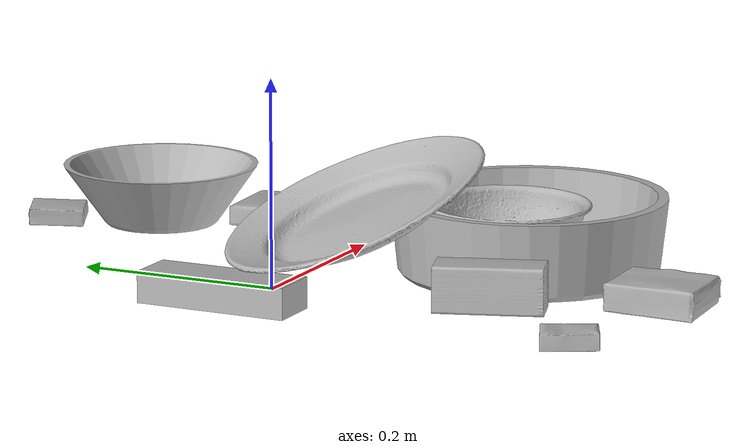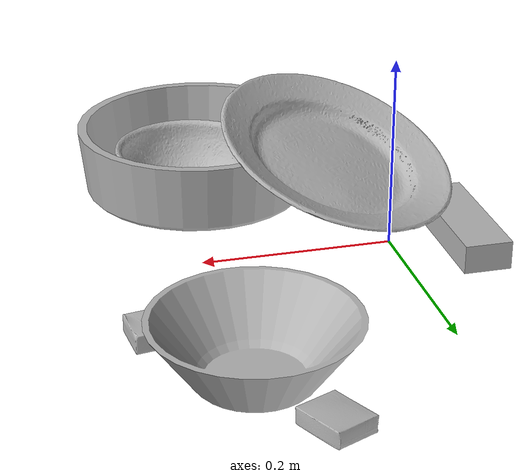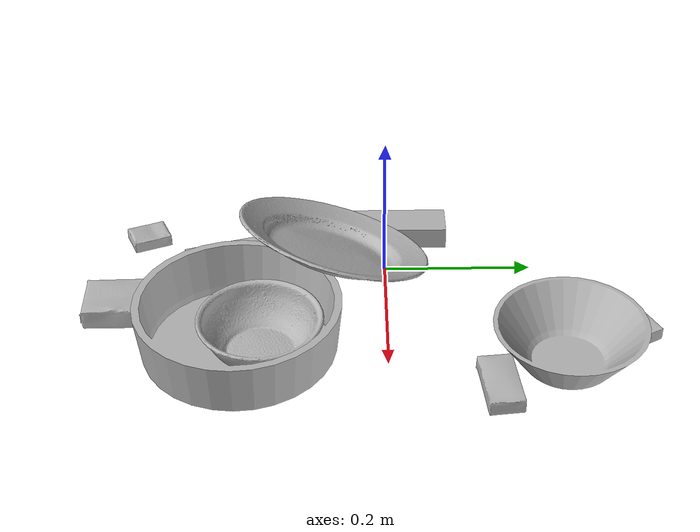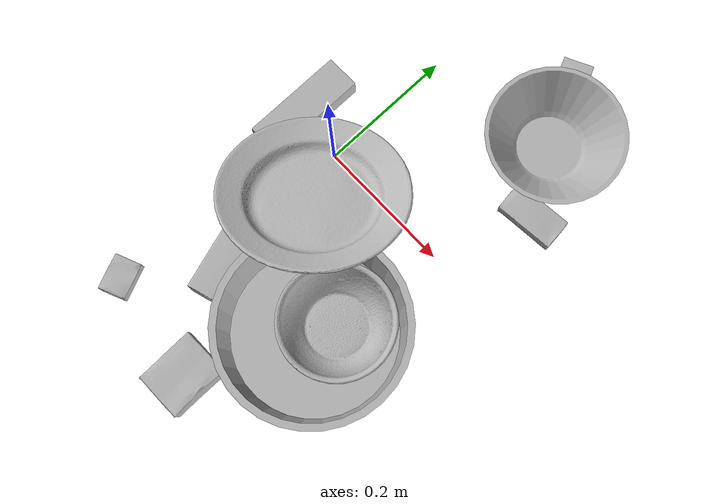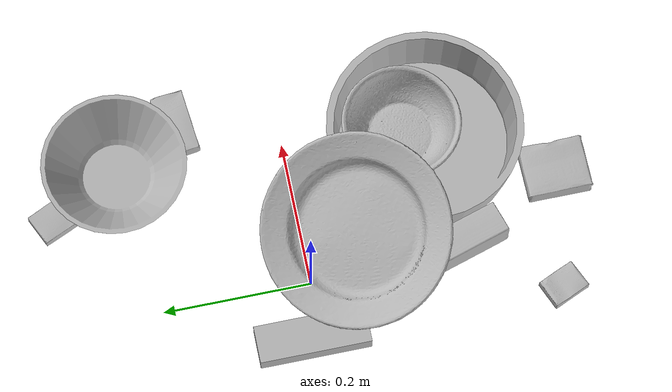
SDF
<sdf version="1.4">
  <world name="default">
    <light name="light1" type="point">
      <pose>0 0 1 0 0 0</pose>
      <diffuse>3 3 3 1</diffuse>
      <specular>3 3 3 1</specular>
    </light>
    <light name="light2" type="point">
      <pose>0 0.5 2 0 0 0</pose>
      <diffuse>1 1 1 1</diffuse>
      <specular>1 1 1 1</specular>
    </light>
    <light name="light3" type="point">
      <pose>0 0.5 2 0 0 0</pose>
      <diffuse>3 3 3 1</diffuse>
      <specular>3 3 3 1</specular>
    </light>
    <scene>
      <ambient>0.7 0.7 0.7</ambient>
    </scene>
    <model name="box1">
      <link name="link_box1">
        <collision name="default">
          <geometry>
            <mesh>
              <uri>model://jenga/collision_meshes/collision.obj</uri>
              <scale>1.0 1.0 1.0</scale>
            </mesh>
          </geometry>
          <surface>
            <friction>
              <ode>
                <mu>0.5</mu>
                <mu2>0.5</mu2>
              </ode>
            </friction>
          <contact>
        <ode>
            <max_vel>0</max_vel>
            <min_depth>0.0001</min_depth>
            <kp>1e8</kp>
        </ode>
    </contact></surface>
        </collision>
        <visual name="default">
          <geometry>
            <mesh>
              <uri>model://jenga/visual_meshes/visual.dae</uri>
              <scale>1.0 1.0 1.0</scale>
            </mesh>
          </geometry>
        </visual>
        <inertial>
          <mass>0.22956150770187378</mass>
          <pose>-2.502855807051674e-07 -0.00010250010382151231 -4.0923401684267446e-05 0.0 -7.34215461761844e-07 0.0</pose>
          <inertia>
            <ixx>6.3525236e-05</ixx>
            <iyy>0.00043044525</iyy>
            <izz>0.0004595369</izz>
            <ixy>0</ixy>
            <ixz>0</ixz>
            <iyz>0</iyz>
          </inertia>
        </inertial>
      </link>
      <pose>-0.07538541406393051 0.012768084183335304 0.015000000596046448 2.1584335326804423e-07 6.242868781328506e-08 1.5707756058039053</pose>
    </model>
    <model name="box11">
      <link name="link_box11">
        <collision name="default">
          <geometry>
            <mesh>
              <uri>model://gelatin_box/collision_meshes/collision.obj</uri>
              <scale>1.0 1.0 1.0</scale>
            </mesh>
          </geometry>
          <surface>
            <friction>
              <ode>
                <mu>0.5</mu>
                <mu2>0.5</mu2>
              </ode>
            </friction>
          <contact>
        <ode>
            <max_vel>0</max_vel>
            <min_depth>0.0001</min_depth>
            <kp>1e8</kp>
        </ode>
    </contact></surface>
        </collision>
        <visual name="default">
          <geometry>
            <mesh>
              <uri>model://gelatin_box/visual_meshes/visual.dae</uri>
              <scale>1.0 1.0 1.0</scale>
            </mesh>
          </geometry>
        </visual>
        <inertial>
          <mass>0.23979201912879944</mass>
          <pose>0.00043196187471039593 0.00011156872642459348 -0.0003640321083366871 -0.0010503717361155602 -0.00475581776093882 0.016440559470502904</pose>
          <inertia>
            <ixx>0.00016927361</ixx>
            <iyy>0.000120911245</iyy>
            <izz>0.00025767216</izz>
            <ixy>0</ixy>
            <ixz>0</ixz>
            <iyz>0</iyz>
          </inertia>
        </inertial>
      </link>
      <pose>0.08817923069000244 -0.3552682101726532 0.015168312937021255 0.005597028314539437 -0.007304095017575249 0.00023320352477728838</pose>
    </model>
    <model name="box2">
      <link name="link_box2">
        <collision name="default">
          <geometry>
            <mesh>
              <uri>model://wood_block/collision_meshes/collision.obj</uri>
              <scale>0.5 0.5 0.5</scale>
            </mesh>
          </geometry>
          <surface>
            <friction>
              <ode>
                <mu>0.5</mu>
                <mu2>0.5</mu2>
              </ode>
            </friction>
          <contact>
        <ode>
            <max_vel>0</max_vel>
            <min_depth>0.0001</min_depth>
            <kp>1e8</kp>
        </ode>
    </contact></surface>
        </collision>
        <visual name="default">
          <geometry>
            <mesh>
              <uri>model://wood_block/visual_meshes/visual.dae</uri>
              <scale>0.5 0.5 0.5</scale>
            </mesh>
          </geometry>
        </visual>
        <inertial>
          <mass>0.1620619148015976</mass>
          <pose>-2.9066577553749084e-06 -0.000285404734313488 0.00013204291462898254 -0.05221116986778199 -0.0051926948812571205 -0.006861377876233232</pose>
          <inertia>
            <ixx>5.421584e-05</ixx>
            <iyy>0.00017126785</iyy>
            <izz>0.00017062723</izz>
            <ixy>0</ixy>
            <ixz>0</ixz>
            <iyz>0</iyz>
          </inertia>
        </inertial>
      </link>
      <pose>0.014501852914690971 -0.2163802534341812 0.022527478635311127 -0.01585064706709205 -0.00040187727443983005 -1.269446444354852</pose>
    </model>
    <model name="box21">
      <link name="link_box21">
        <collision name="default">
          <geometry>
            <mesh>
              <uri>model://cracker_box/collision_meshes/collision.obj</uri>
              <scale>0.25 0.25 0.25</scale>
            </mesh>
          </geometry>
          <surface>
            <friction>
              <ode>
                <mu>0.5</mu>
                <mu2>0.5</mu2>
              </ode>
            </friction>
          <contact>
        <ode>
            <max_vel>0</max_vel>
            <min_depth>0.0001</min_depth>
            <kp>1e8</kp>
        </ode>
    </contact></surface>
        </collision>
        <visual name="default">
          <geometry>
            <mesh>
              <uri>model://cracker_box/visual_meshes/visual.dae</uri>
              <scale>0.25 0.25 0.25</scale>
            </mesh>
          </geometry>
        </visual>
        <inertial>
          <mass>0.053346797823905945</mass>
          <pose>0.0002366035187151283 6.358561950037256e-05 -0.00042573839891701937 -0.0003162075101960104 -0.011106487737771283 0.002546795233856971</pose>
          <inertia>
            <ixx>8.4806525e-06</ixx>
            <iyy>1.40032225e-05</iyy>
            <izz>1.9983887e-05</izz>
            <ixy>0</ixy>
            <ixz>0</ixz>
            <iyz>0</iyz>
          </inertia>
        </inertial>
      </link>
      <pose>-0.07110121101140976 -0.3304138481616974 0.009096028283238411 -0.014051035109420839 -0.005016114417905229 -1.1719822463713225</pose>
    </model>
    <model name="box3">
      <link name="link_box3">
        <collision name="default">
          <geometry>
            <mesh>
              <uri>model://pudding_box/collision_meshes/collision.obj</uri>
              <scale>0.5 0.5 0.5</scale>
            </mesh>
          </geometry>
          <surface>
            <friction>
              <ode>
                <mu>0.5</mu>
                <mu2>0.5</mu2>
              </ode>
            </friction>
          <contact>
        <ode>
            <max_vel>0</max_vel>
            <min_depth>0.0001</min_depth>
            <kp>1e8</kp>
        </ode>
    </contact></surface>
        </collision>
        <visual name="default">
          <geometry>
            <mesh>
              <uri>model://pudding_box/visual_meshes/visual.dae</uri>
              <scale>0.5 0.5 0.5</scale>
            </mesh>
          </geometry>
        </visual>
        <inertial>
          <mass>0.03981568291783333</mass>
          <pose>0.00024474109522998333 0.00040339428232982755 -0.00025944141088984907 0.005213101343760943 -0.0066037982384193495 0.020079821436446477</pose>
          <inertia>
            <ixx>1.1252395e-05</ixx>
            <iyy>7.5706907e-06</iyy>
            <izz>1.6617103e-05</izz>
            <ixy>0</ixy>
            <ixz>0</ixz>
            <iyz>0</iyz>
          </inertia>
        </inertial>
      </link>
      <pose>0.1529570072889328 0.3205091655254364 0.009862905368208885 0.022348461512875846 -0.01139178638329926 0.43929048425045863</pose>
    </model>
    <model name="box31">
      <link name="link_box31">
        <collision name="default">
          <geometry>
            <mesh>
              <uri>model://sugar_box/collision_meshes/collision.obj</uri>
              <scale>0.5 0.5 0.5</scale>
            </mesh>
          </geometry>
          <surface>
            <friction>
              <ode>
                <mu>0.5</mu>
                <mu2>0.5</mu2>
              </ode>
            </friction>
          <contact>
        <ode>
            <max_vel>0</max_vel>
            <min_depth>0.0001</min_depth>
            <kp>1e8</kp>
        </ode>
    </contact></surface>
        </collision>
        <visual name="default">
          <geometry>
            <mesh>
              <uri>model://sugar_box/visual_meshes/visual.dae</uri>
              <scale>0.5 0.5 0.5</scale>
            </mesh>
          </geometry>
        </visual>
        <inertial>
          <mass>0.09878891706466675</mass>
          <pose>0.0005171863595023751 1.924554817378521e-05 -0.00018182402709499002 -0.0004046259508743568 0.001050663638168667 0.0026153790219137513</pose>
          <inertia>
            <ixx>2.0577656e-05</ixx>
            <iyy>6.651122e-05</iyy>
            <izz>7.9621874e-05</izz>
            <ixy>0</ixy>
            <ixz>0</ixz>
            <iyz>0</iyz>
          </inertia>
        </inertial>
      </link>
      <pose>0.25416454672813416 0.13687291741371155 0.011399299837648869 0.0007743849048552342 -0.023432966739035554 -3.039519231318947</pose>
    </model>
    <model name="plate1">
      <link name="link_plate1">
        <collision name="default">
          <geometry>
            <mesh>
              <uri>model://pan_tefal/collision_meshes/collision.obj</uri>
              <scale>1.0 1.0 1.0</scale>
            </mesh>
          </geometry>
          <surface>
            <friction>
              <ode>
                <mu>0.5</mu>
                <mu2>0.5</mu2>
              </ode>
            </friction>
          <contact>
        <ode>
            <max_vel>0</max_vel>
            <min_depth>0.0001</min_depth>
            <kp>1e8</kp>
        </ode>
    </contact></surface>
        </collision>
        <visual name="default">
          <geometry>
            <mesh>
              <uri>model://pan_tefal/visual_meshes/visual.dae</uri>
              <scale>1.0 1.0 1.0</scale>
            </mesh>
          </geometry>
        </visual>
        <inertial>
          <mass>1.1273940801620483</mass>
          <pose>-0.00018001534044742584 3.279306838521734e-05 -0.00851493701338768 0.0008190361817388816 -0.00033014848142065665 -0.3318599615030245</pose>
          <inertia>
            <ixx>0.007782347</ixx>
            <iyy>0.00783252</iyy>
            <izz>0.014325799</izz>
            <ixy>0</ixy>
            <ixz>0</ixz>
            <iyz>0</iyz>
          </inertia>
        </inertial>
      </link>
      <pose>0.16576552391052246 -0.1897936910390854 0.03804999962449074 3.78421728423449e-08 -1.0410330379201274e-08 -1.0580009998512636</pose>
    </model>
    <model name="bowl1">
      <link name="link_bowl1">
        <collision name="default">
          <geometry>
            <mesh>
              <uri>model://bowl_a/collision_meshes/collision.obj</uri>
              <scale>1.0 1.0 1.0</scale>
            </mesh>
          </geometry>
          <surface>
            <friction>
              <ode>
                <mu>0.5</mu>
                <mu2>0.5</mu2>
              </ode>
            </friction>
          <contact>
        <ode>
            <max_vel>0</max_vel>
            <min_depth>0.0001</min_depth>
            <kp>1e8</kp>
        </ode>
    </contact></surface>
        </collision>
        <visual name="default">
          <geometry>
            <mesh>
              <uri>model://bowl_a/visual_meshes/visual.dae</uri>
              <scale>1.0 1.0 1.0</scale>
            </mesh>
          </geometry>
        </visual>
        <inertial>
          <mass>0.3873887062072754</mass>
          <pose>0.00027867493918165565 4.731054286821745e-05 -0.0013765293406322598 -0.0009805472575270138 -0.0010938146264646796 -0.19122952428204854</pose>
          <inertia>
            <ixx>0.0011029133</ixx>
            <iyy>0.0011096848</iyy>
            <izz>0.001961574</izz>
            <ixy>0</ixy>
            <ixz>0</ixz>
            <iyz>0</iyz>
          </inertia>
        </inertial>
      </link>
      <pose>0.19955042004585266 0.22753022611141205 0.03038298524916172 1.0121575664406858e-08 2.1098430763626433e-08 -1.0665002092131695</pose>
    </model>
    <model name="plate2">
      <link name="link_plate2">
        <collision name="default">
          <geometry>
            <mesh>
              <uri>model://plate/collision_meshes/collision.obj</uri>
              <scale>1.0 1.0 1.0</scale>
            </mesh>
          </geometry>
          <surface>
            <friction>
              <ode>
                <mu>0.5</mu>
                <mu2>0.5</mu2>
              </ode>
            </friction>
          <contact>
        <ode>
            <max_vel>0</max_vel>
            <min_depth>0.0001</min_depth>
            <kp>1e8</kp>
        </ode>
    </contact></surface>
        </collision>
        <visual name="default">
          <geometry>
            <mesh>
              <uri>model://plate/visual_meshes/visual.dae</uri>
              <scale>1.0 1.0 1.0</scale>
            </mesh>
          </geometry>
        </visual>
        <inertial>
          <mass>0.13866961002349854</mass>
          <pose>-0.0006044620531611145 0.0002782586379908025 -0.0010561972158029675 0.0022187857877866432 -0.0032254843385796767 0.452609315183835</pose>
          <inertia>
            <ixx>0.0006486992</ixx>
            <iyy>0.0006424946</iyy>
            <izz>0.0012687586</izz>
            <ixy>0</ixy>
            <ixz>0</ixz>
            <iyz>0</iyz>
          </inertia>
        </inertial>
      </link>
      <pose>0.03998487815260887 -0.07062163949012756 0.07247284799814224 -0.1652341095656158 0.3660486194985258 1.8855195927055164</pose>
    </model>
    <model name="bowl2">
      <link name="link_bowl2">
        <collision name="default">
          <geometry>
            <mesh>
              <uri>model://bowl/collision_meshes/collision.obj</uri>
              <scale>1.0 1.0 1.0</scale>
            </mesh>
          </geometry>
          <surface>
            <friction>
              <ode>
                <mu>0.5</mu>
                <mu2>0.5</mu2>
              </ode>
            </friction>
          <contact>
        <ode>
            <max_vel>0</max_vel>
            <min_depth>0.0001</min_depth>
            <kp>1e8</kp>
        </ode>
    </contact></surface>
        </collision>
        <visual name="default">
          <geometry>
            <mesh>
              <uri>model://bowl/visual_meshes/visual.dae</uri>
              <scale>1.0 1.0 1.0</scale>
            </mesh>
          </geometry>
        </visual>
        <inertial>
          <mass>0.04854629561305046</mass>
          <pose>0.00020445325935725123 -0.0010302069131284952 -0.0008042645058594644 -0.015764106240563104 0.014546770392749554 0.7140394241749954</pose>
          <inertia>
            <ixx>0.00011151466</ixx>
            <iyy>0.00010902299</iyy>
            <izz>0.00018760598</izz>
            <ixy>0</ixy>
            <ixz>0</ixz>
            <iyz>0</iyz>
          </inertia>
        </inertial>
      </link>
      <pose>0.18110911548137665 -0.16148295998573303 0.03545359894633293 0.002633437777642326 -0.0025818429914919758 -3.029185581225073</pose>
    </model>
  <physics type="ode">
      <max_contacts>50</max_contacts>
      <ode>
        <solver>
          <type>quick</type>
          <iters>75</iters>
        </solver>
        <constraints>
          <contact_max_correcting_vel>0</contact_max_correcting_vel>
          <contact_surface_layer>0</contact_surface_layer>
        </constraints>
      </ode>
    </physics></world>
</sdf>
